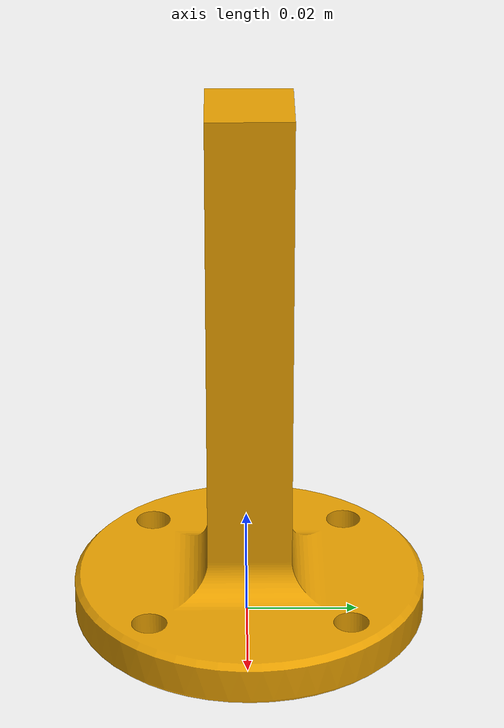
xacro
<?xml version="1.0"?>

<robot xmlns:xacro="http://ros.org/wiki/xacro" name="finger_long">
  <xacro:property name="M_PI" value="3.1415926535897931" />
  <!-- Create the link of the finger -->
  <link name="finger_base">
    <visual>
      <geometry>
        <mesh filename="./finger/finger_long.dae"/>
      </geometry>
    </visual>
  </link>

  <joint name="finger_base_to_mount" type="fixed">
    <parent link="finger_mount" />
    <child link = "finger_base" />
    <origin xyz="0.031 -0.031 0.098" rpy="0 ${M_PI} 0" />
  </joint>
  <link name="finger_mount"/>

  <joint name="finger_base_to_tool" type="fixed">
    <parent link="finger_mount" />
    <child link = "finger_tip" />
    <origin xyz="0.0 0.0 0.098" rpy="0 0 0" />
  </joint>
  <link name="finger_tip"/>

</robot>
